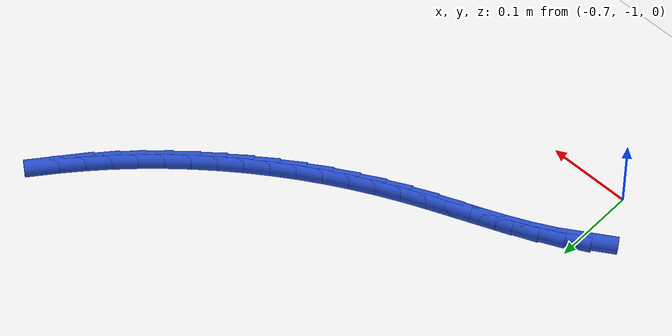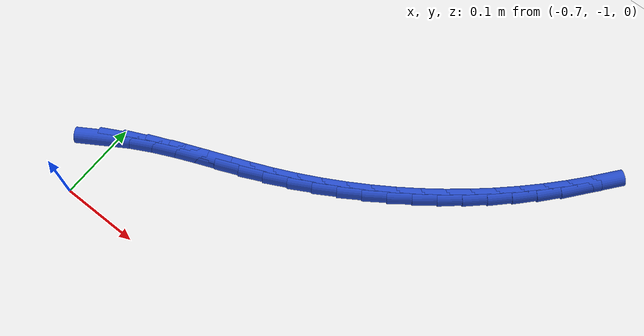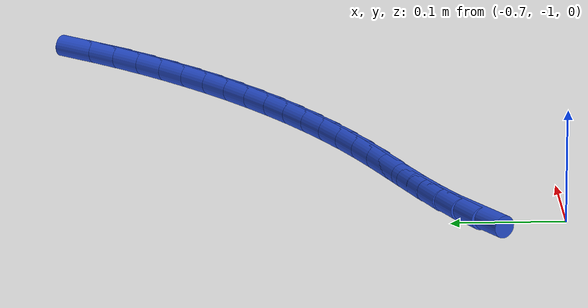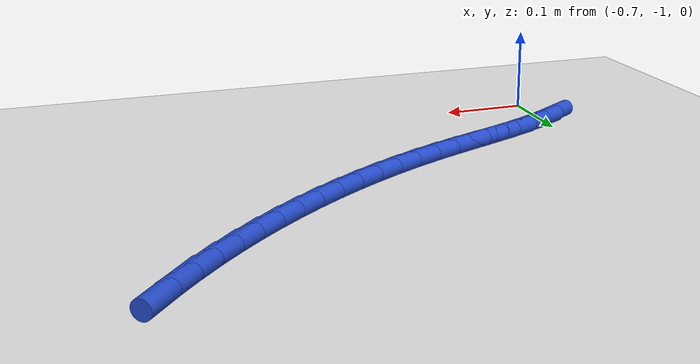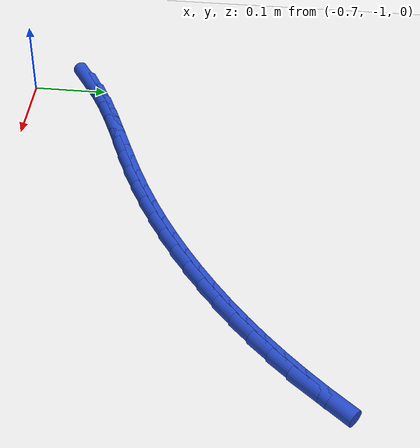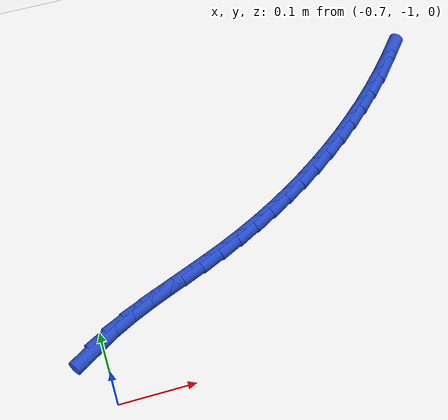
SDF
<sdf version="1.6">
 <world name="default">
  <model name="ground_plane">
   <static>1</static>
   <link name="link">
    <collision name="collision">
     <geometry><plane><normal>0 0 1</normal><size>100 100</size></plane></geometry>
     <surface><friction><ode><mu>100</mu><mu2>50</mu2></ode></friction></surface>
    </collision>
    <visual name="visual">
     <cast_shadows>0</cast_shadows>
     <geometry><plane><normal>0 0 1</normal><size>100 100</size></plane></geometry>
     <material>
      <script><uri>file://media/materials/scripts/gazebo.material</uri><name>Gazebo/WhiteGlow</name></script>
     </material>
    </visual>
   </link>
  </model>
  <model name="line">
   <link name="link_208">
    <pose>-0.7069732464985314 -0.9218305875920985 0.01 0 1.57 0.5578737793943992</pose>
    <collision name="collision">
     <geometry><cylinder><radius>0.01</radius><length>0.08</length></cylinder></geometry>
    </collision>
    <visual name="visual">
     <material>
      <script><name>Gazebo/Blue</name><uri>file://media/materials/scripts/gazebo.material</uri></script>
     </material>
     <geometry><cylinder><radius>0.01</radius><length>0.08</length></cylinder></geometry>
    </visual>
   </link>
   <link name="link_209">
    <pose>-0.6825093528982497 -0.9065653257156804 0.01 0 1.57 0.48563067127256804</pose>
    <collision name="collision">
     <geometry><cylinder><radius>0.01</radius><length>0.08</length></cylinder></geometry>
    </collision>
    <visual name="visual">
     <material>
      <script><name>Gazebo/Blue</name><uri>file://media/materials/scripts/gazebo.material</uri></script>
     </material>
     <geometry><cylinder><radius>0.01</radius><length>0.08</length></cylinder></geometry>
    </visual>
   </link>
   <link name="link_210">
    <pose>-0.6566528431426739 -0.8929185508767352 0.01 0 1.57 0.4333475762240345</pose>
    <collision name="collision">
     <geometry><cylinder><radius>0.01</radius><length>0.08</length></cylinder></geometry>
    </collision>
    <visual name="visual">
     <material>
      <script><name>Gazebo/Blue</name><uri>file://media/materials/scripts/gazebo.material</uri></script>
     </material>
     <geometry><cylinder><radius>0.01</radius><length>0.08</length></cylinder></geometry>
    </visual>
   </link>
   <link name="link_211">
    <pose>-0.6297221440329694 -0.8804582832510571 0.01 0 1.57 0.4000028188503912</pose>
    <collision name="collision">
     <geometry><cylinder><radius>0.01</radius><length>0.08</length></cylinder></geometry>
    </collision>
    <visual name="visual">
     <material>
      <script><name>Gazebo/Blue</name><uri>file://media/materials/scripts/gazebo.material</uri></script>
     </material>
     <geometry><cylinder><radius>0.01</radius><length>0.08</length></cylinder></geometry>
    </visual>
   </link>
   <link name="link_212">
    <pose>-0.6020356823703011 -0.8687525430144397 0.01 0 1.57 0.38459710317813595</pose>
    <collision name="collision">
     <geometry><cylinder><radius>0.01</radius><length>0.08</length></cylinder></geometry>
    </collision>
    <visual name="visual">
     <material>
      <script><name>Gazebo/Blue</name><uri>file://media/materials/scripts/gazebo.material</uri></script>
     </material>
     <geometry><cylinder><radius>0.01</radius><length>0.08</length></cylinder></geometry>
    </visual>
   </link>
   <link name="link_213">
    <pose>-0.5739118849558341 -0.8573693503426769 0.01 0 1.57 0.3864607475438778</pose>
    <collision name="collision">
     <geometry><cylinder><radius>0.01</radius><length>0.08</length></cylinder></geometry>
    </collision>
    <visual name="visual">
     <material>
      <script><name>Gazebo/Blue</name><uri>file://media/materials/scripts/gazebo.material</uri></script>
     </material>
     <geometry><cylinder><radius>0.01</radius><length>0.08</length></cylinder></geometry>
    </visual>
   </link>
   <link name="link_214">
    <pose>-0.5456691785907335 -0.8458767254115626 0.01 0 1.57 0.4053583937193828</pose>
    <collision name="collision">
     <geometry><cylinder><radius>0.01</radius><length>0.08</length></cylinder></geometry>
    </collision>
    <visual name="visual">
     <material>
      <script><name>Gazebo/Blue</name><uri>file://media/materials/scripts/gazebo.material</uri></script>
     </material>
     <geometry><cylinder><radius>0.01</radius><length>0.08</length></cylinder></geometry>
    </visual>
   </link>
   <link name="link_215">
    <pose>-0.5176259720109606 -0.8338427166398822 0.01 0 1.57 0.4378418660004615</pose>
    <collision name="collision">
     <geometry><cylinder><radius>0.01</radius><length>0.08</length></cylinder></geometry>
    </collision>
    <visual name="visual">
     <material>
      <script><name>Gazebo/Blue</name><uri>file://media/materials/scripts/gazebo.material</uri></script>
     </material>
     <geometry><cylinder><radius>0.01</radius><length>0.08</length></cylinder></geometry>
    </visual>
   </link>
   <link name="link_216">
    <pose>-0.4900408840947722 -0.8209288474220982 0.01 0 1.57 0.4724727364634141</pose>
    <collision name="collision">
     <geometry><cylinder><radius>0.01</radius><length>0.08</length></cylinder></geometry>
    </collision>
    <visual name="visual">
     <material>
      <script><name>Gazebo/Blue</name><uri>file://media/materials/scripts/gazebo.material</uri></script>
     </material>
     <geometry><cylinder><radius>0.01</radius><length>0.08</length></cylinder></geometry>
    </visual>
   </link>
   <link name="link_217">
    <pose>-0.4629795623026799 -0.8070983310926146 0.01 0 1.57 0.5069542770203385</pose>
    <collision name="collision">
     <geometry><cylinder><radius>0.01</radius><length>0.08</length></cylinder></geometry>
    </collision>
    <visual name="visual">
     <material>
      <script><name>Gazebo/Blue</name><uri>file://media/materials/scripts/gazebo.material</uri></script>
     </material>
     <geometry><cylinder><radius>0.01</radius><length>0.08</length></cylinder></geometry>
    </visual>
   </link>
   <link name="link_218">
    <pose>-0.4364687962499887 -0.792375131023968 0.01 0 1.57 0.5413225690304254</pose>
    <collision name="collision">
     <geometry><cylinder><radius>0.01</radius><length>0.08</length></cylinder></geometry>
    </collision>
    <visual name="visual">
     <material>
      <script><name>Gazebo/Blue</name><uri>file://media/materials/scripts/gazebo.material</uri></script>
     </material>
     <geometry><cylinder><radius>0.01</radius><length>0.08</length></cylinder></geometry>
    </visual>
   </link>
   <link name="link_219">
    <pose>-0.41053537555200353 -0.7767832105886949 0.01 0 1.57 0.5756155451185745</pose>
    <collision name="collision">
     <geometry><cylinder><radius>0.01</radius><length>0.08</length></cylinder></geometry>
    </collision>
    <visual name="visual">
     <material>
      <script><name>Gazebo/Blue</name><uri>file://media/materials/scripts/gazebo.material</uri></script>
     </material>
     <geometry><cylinder><radius>0.01</radius><length>0.08</length></cylinder></geometry>
    </visual>
   </link>
   <link name="link_220">
    <pose>-0.3852060898240298 -0.7603465331593324 0.01 0 1.57 0.6098727032777996</pose>
    <collision name="collision">
     <geometry><cylinder><radius>0.01</radius><length>0.08</length></cylinder></geometry>
    </collision>
    <visual name="visual">
     <material>
      <script><name>Gazebo/Blue</name><uri>file://media/materials/scripts/gazebo.material</uri></script>
     </material>
     <geometry><cylinder><radius>0.01</radius><length>0.08</length></cylinder></geometry>
    </visual>
   </link>
   <link name="link_221">
    <pose>-0.3605077286813724 -0.743089062108417 0.01 0 1.57 0.644134829393892</pose>
    <collision name="collision">
     <geometry><cylinder><radius>0.01</radius><length>0.08</length></cylinder></geometry>
    </collision>
    <visual name="visual">
     <material>
      <script><name>Gazebo/Blue</name><uri>file://media/materials/scripts/gazebo.material</uri></script>
     </material>
     <geometry><cylinder><radius>0.01</radius><length>0.08</length></cylinder></geometry>
    </visual>
   </link>
   <link name="link_222">
    <pose>-0.33646708173933654 -0.7250347608084853 0.01 0 1.57 0.6784437242103051</pose>
    <collision name="collision">
     <geometry><cylinder><radius>0.01</radius><length>0.08</length></cylinder></geometry>
    </collision>
    <visual name="visual">
     <material>
      <script><name>Gazebo/Blue</name><uri>file://media/materials/scripts/gazebo.material</uri></script>
     </material>
     <geometry><cylinder><radius>0.01</radius><length>0.08</length></cylinder></geometry>
    </visual>
   </link>
   <link name="link_223">
    <pose>-0.3131109386132272 -0.7062075926320742 0.01 0 1.57 0.7128419300180089</pose>
    <collision name="collision">
     <geometry><cylinder><radius>0.01</radius><length>0.08</length></cylinder></geometry>
    </collision>
    <visual name="visual">
     <material>
      <script><name>Gazebo/Blue</name><uri>file://media/materials/scripts/gazebo.material</uri></script>
     </material>
     <geometry><cylinder><radius>0.01</radius><length>0.08</length></cylinder></geometry>
    </visual>
   </link>
   <link name="link_224">
    <pose>-0.2904660889183495 -0.6866315209517203 0.01 0 1.57 0.747372451765336</pose>
    <collision name="collision">
     <geometry><cylinder><radius>0.01</radius><length>0.08</length></cylinder></geometry>
    </collision>
    <visual name="visual">
     <material>
      <script><name>Gazebo/Blue</name><uri>file://media/materials/scripts/gazebo.material</uri></script>
     </material>
     <geometry><cylinder><radius>0.01</radius><length>0.08</length></cylinder></geometry>
    </visual>
   </link>
   <link name="link_225">
    <pose>-0.26855932227000867 -0.6663305091399605 0.01 0 1.57 0.7820784668378659</pose>
    <collision name="collision">
     <geometry><cylinder><radius>0.01</radius><length>0.08</length></cylinder></geometry>
    </collision>
    <visual name="visual">
     <material>
      <script><name>Gazebo/Blue</name><uri>file://media/materials/scripts/gazebo.material</uri></script>
     </material>
     <geometry><cylinder><radius>0.01</radius><length>0.08</length></cylinder></geometry>
    </visual>
   </link>
   <link name="link_226">
    <pose>-0.24741742828350957 -0.6453285205693313 0.01 0 1.57 0.817003017466315</pose>
    <collision name="collision">
     <geometry><cylinder><radius>0.01</radius><length>0.08</length></cylinder></geometry>
    </collision>
    <visual name="visual">
     <material>
      <script><name>Gazebo/Blue</name><uri>file://media/materials/scripts/gazebo.material</uri></script>
     </material>
     <geometry><cylinder><radius>0.01</radius><length>0.08</length></cylinder></geometry>
    </visual>
   </link>
   <link name="link_227">
    <pose>-0.22706719657415753 -0.6236495186123696 0.01 0 1.57 0.8521886796027505</pose>
    <collision name="collision">
     <geometry><cylinder><radius>0.01</radius><length>0.08</length></cylinder></geometry>
    </collision>
    <visual name="visual">
     <material>
      <script><name>Gazebo/Blue</name><uri>file://media/materials/scripts/gazebo.material</uri></script>
     </material>
     <geometry><cylinder><radius>0.01</radius><length>0.08</length></cylinder></geometry>
    </visual>
   </link>
   <link name="link_228">
    <pose>-0.20753541675725745 -0.6013174666416119 0.01 0 1.57 0.8876772021938032</pose>
    <collision name="collision">
     <geometry><cylinder><radius>0.01</radius><length>0.08</length></cylinder></geometry>
    </collision>
    <visual name="visual">
     <material>
      <script><name>Gazebo/Blue</name><uri>file://media/materials/scripts/gazebo.material</uri></script>
     </material>
     <geometry><cylinder><radius>0.01</radius><length>0.08</length></cylinder></geometry>
    </visual>
   </link>
  </model>
 </world>
</sdf>
